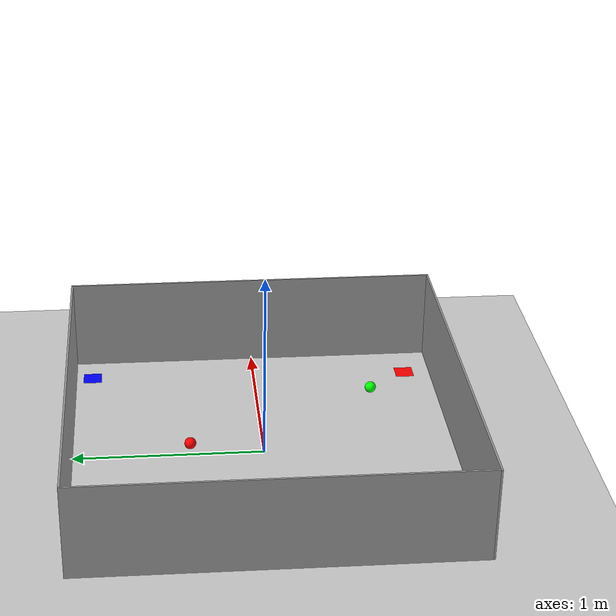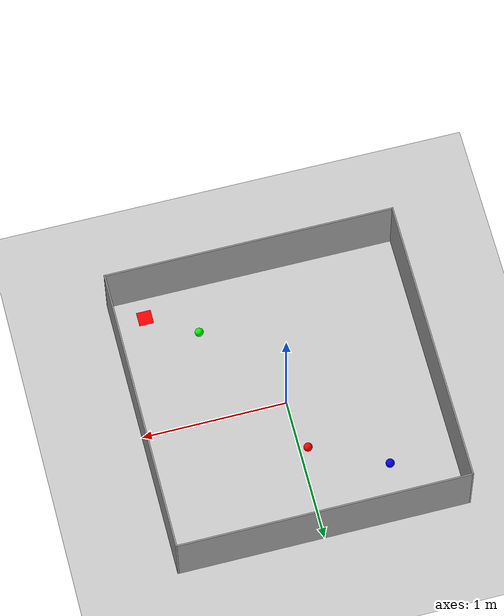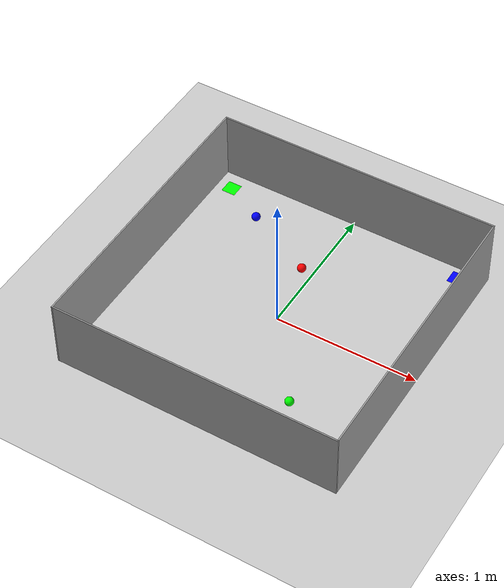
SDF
<sdf version="1.7">
 <world name="default">
  <light name="sun" type="directional">
   <pose>0 0 10 0 -0 0</pose>
   <diffuse>0.8 0.8 0.8 1</diffuse>
   <specular>0.2 0.2 0.2 1</specular>
   <attenuation>
    <range>1000</range>
    <constant>0.9</constant>
    <linear>0.01</linear>
    <quadratic>0.001</quadratic>
   </attenuation>
   <direction>-0.5 0.1 -0.9</direction>
   <spot><inner_angle>0</inner_angle><outer_angle>0</outer_angle><falloff>0</falloff></spot>
  </light>
  <model name="ground_plane">
   <static>1</static>
   <link name="link">
    <collision name="collision">
     <geometry><plane><normal>0 0 1</normal><size>100 100</size></plane></geometry>
     <surface><friction><ode><mu>100</mu><mu2>50</mu2></ode></friction></surface>
    </collision>
    <visual name="visual">
     <cast_shadows>0</cast_shadows>
     <geometry><plane><normal>0 0 1</normal><size>100 100</size></plane></geometry>
     <material>
      <script><uri>file://media/materials/scripts/gazebo.material</uri><name>Gazebo/Grey</name></script>
     </material>
    </visual>
   </link>
  </model>
  <gravity>0 0 -9.8</gravity>
  <magnetic_field>6e-06 2.3e-05 -4.2e-05</magnetic_field>
  <atmosphere type="adiabatic"/>
  <physics type="ode">
   <max_step_size>0.001</max_step_size>
   <real_time_factor>1</real_time_factor>
   <real_time_update_rate>1000</real_time_update_rate>
  </physics>
  <scene><ambient>0.4 0.4 0.4 1</ambient><background>0.7 0.7 0.7 1</background><shadows>1</shadows></scene>
  <audio><device>default</device></audio>
  <spherical_coordinates>
   <surface_model>EARTH_WGS84</surface_model>
   <latitude_deg>0</latitude_deg>
   <longitude_deg>0</longitude_deg>
   <elevation>0</elevation>
   <heading_deg>0</heading_deg>
  </spherical_coordinates>
  <model name="Zidovi">
   <link name="Floor_0">
    <pose>-0.965 -0.965006 2.5 0 -0 0</pose>
    <visual name="Floor_0_Visual">
     <pose>0 0 0.05 0 -0 0</pose>
     <geometry><box><size>0 0 0.1</size></box></geometry>
     <material>
      <script><uri>file://media/materials/scripts/gazebo.material</uri><name>Gazebo/Grey</name></script>
      <ambient>1 1 1 1</ambient>
      <shader type="pixel"/>
     </material>
     <meta><layer>1</layer></meta>
    </visual>
    <collision name="Floor_0_Collision">
     <pose>0 0 0.05 0 -0 0</pose>
     <geometry><box><size>0 0 0.1</size></box></geometry>
     <surface>
      <friction>
       <ode><mu>1</mu><mu2>1</mu2><fdir1>0 0 0</fdir1><slip1>0</slip1><slip2>0</slip2></ode>
       <torsional>
        <coefficient>1</coefficient>
        <patch_radius>0</patch_radius>
        <surface_radius>0</surface_radius>
        <use_patch_radius>1</use_patch_radius>
        <ode><slip>0</slip></ode>
       </torsional>
      </friction>
      <bounce><restitution_coefficient>0</restitution_coefficient><threshold>1e+06</threshold></bounce>
      <contact>
       <collide_without_contact>0</collide_without_contact>
       <collide_without_contact_bitmask>1</collide_without_contact_bitmask>
       <collide_bitmask>1</collide_bitmask>
       <ode>
        <soft_cfm>0</soft_cfm>
        <soft_erp>0.2</soft_erp>
        <kp>1e+13</kp>
        <kd>1</kd>
        <max_vel>0.01</max_vel>
        <min_depth>0</min_depth>
       </ode>
       <bullet>
        <split_impulse>1</split_impulse>
        <split_impulse_penetration_threshold>-0.01</split_impulse_penetration_threshold>
        <soft_cfm>0</soft_cfm>
        <soft_erp>0.2</soft_erp>
        <kp>1e+13</kp>
        <kd>1</kd>
       </bullet>
      </contact>
     </surface>
    </collision>
   </link>
   <link name="Wall_0">
    <pose>-0.965 0.034994 0 0 -0 1.5708</pose>
    <visual name="Wall_0_Visual">
     <pose>0 0 0.25 0 -0 0</pose>
     <geometry><box><size>2.01003 0.01 0.5</size></box></geometry>
     <material>
      <script><uri>file://media/materials/scripts/gazebo.material</uri><name>Gazebo/Grey</name></script>
      <ambient>1 1 1 1</ambient>
      <shader type="pixel"/>
     </material>
     <meta><layer>0</layer></meta>
    </visual>
    <collision name="Wall_0_Collision">
     <pose>0 0 0.25 0 -0 0</pose>
     <geometry><box><size>2.01003 0.01 0.5</size></box></geometry>
     <surface>
      <friction>
       <ode><mu>1</mu><mu2>1</mu2><fdir1>0 0 0</fdir1><slip1>0</slip1><slip2>0</slip2></ode>
       <torsional>
        <coefficient>1</coefficient>
        <patch_radius>0</patch_radius>
        <surface_radius>0</surface_radius>
        <use_patch_radius>1</use_patch_radius>
        <ode><slip>0</slip></ode>
       </torsional>
      </friction>
      <bounce><restitution_coefficient>0</restitution_coefficient><threshold>1e+06</threshold></bounce>
      <contact>
       <collide_without_contact>0</collide_without_contact>
       <collide_without_contact_bitmask>1</collide_without_contact_bitmask>
       <collide_bitmask>1</collide_bitmask>
       <ode>
        <soft_cfm>0</soft_cfm>
        <soft_erp>0.2</soft_erp>
        <kp>1e+13</kp>
        <kd>1</kd>
        <max_vel>0.01</max_vel>
        <min_depth>0</min_depth>
       </ode>
       <bullet>
        <split_impulse>1</split_impulse>
        <split_impulse_penetration_threshold>-0.01</split_impulse_penetration_threshold>
        <soft_cfm>0</soft_cfm>
        <soft_erp>0.2</soft_erp>
        <kp>1e+13</kp>
        <kd>1</kd>
       </bullet>
      </contact>
     </surface>
    </collision>
   </link>
   <link name="Wall_1">
    <pose>0.035 1.03499 0 0 -0 0</pose>
    <visual name="Wall_1_Visual">
     <pose>0 0 0.25 0 -0 0</pose>
     <geometry><box><size>2.01 0.01 0.5</size></box></geometry>
     <material>
      <script><uri>file://media/materials/scripts/gazebo.material</uri><name>Gazebo/Grey</name></script>
      <ambient>1 1 1 1</ambient>
      <shader type="pixel"/>
     </material>
     <meta><layer>0</layer></meta>
    </visual>
    <collision name="Wall_1_Collision">
     <pose>0 0 0.25 0 -0 0</pose>
     <geometry><box><size>2.01 0.01 0.5</size></box></geometry>
     <surface>
      <friction>
       <ode><mu>1</mu><mu2>1</mu2><fdir1>0 0 0</fdir1><slip1>0</slip1><slip2>0</slip2></ode>
       <torsional>
        <coefficient>1</coefficient>
        <patch_radius>0</patch_radius>
        <surface_radius>0</surface_radius>
        <use_patch_radius>1</use_patch_radius>
        <ode><slip>0</slip></ode>
       </torsional>
      </friction>
      <bounce><restitution_coefficient>0</restitution_coefficient><threshold>1e+06</threshold></bounce>
      <contact>
       <collide_without_contact>0</collide_without_contact>
       <collide_without_contact_bitmask>1</collide_without_contact_bitmask>
       <collide_bitmask>1</collide_bitmask>
       <ode>
        <soft_cfm>0</soft_cfm>
        <soft_erp>0.2</soft_erp>
        <kp>1e+13</kp>
        <kd>1</kd>
        <max_vel>0.01</max_vel>
        <min_depth>0</min_depth>
       </ode>
       <bullet>
        <split_impulse>1</split_impulse>
        <split_impulse_penetration_threshold>-0.01</split_impulse_penetration_threshold>
        <soft_cfm>0</soft_cfm>
        <soft_erp>0.2</soft_erp>
        <kp>1e+13</kp>
        <kd>1</kd>
       </bullet>
      </contact>
     </surface>
    </collision>
   </link>
   <link name="Wall_2">
    <pose>1.035 0.034994 0 0 0 -1.5708</pose>
    <visual name="Wall_2_Visual">
     <pose>0 0 0.25 0 -0 0</pose>
     <geometry><box><size>2.01 0.01 0.5</size></box></geometry>
     <material>
      <script><uri>file://media/materials/scripts/gazebo.material</uri><name>Gazebo/Grey</name></script>
      <ambient>1 1 1 1</ambient>
      <shader type="pixel"/>
     </material>
     <meta><layer>0</layer></meta>
    </visual>
    <collision name="Wall_2_Collision">
     <pose>0 0 0.25 0 -0 0</pose>
     <geometry><box><size>2.01 0.01 0.5</size></box></geometry>
     <surface>
      <friction>
       <ode><mu>1</mu><mu2>1</mu2><fdir1>0 0 0</fdir1><slip1>0</slip1><slip2>0</slip2></ode>
       <torsional>
        <coefficient>1</coefficient>
        <patch_radius>0</patch_radius>
        <surface_radius>0</surface_radius>
        <use_patch_radius>1</use_patch_radius>
        <ode><slip>0</slip></ode>
       </torsional>
      </friction>
      <bounce><restitution_coefficient>0</restitution_coefficient><threshold>1e+06</threshold></bounce>
      <contact>
       <collide_without_contact>0</collide_without_contact>
       <collide_without_contact_bitmask>1</collide_without_contact_bitmask>
       <collide_bitmask>1</collide_bitmask>
       <ode>
        <soft_cfm>0</soft_cfm>
        <soft_erp>0.2</soft_erp>
        <kp>1e+13</kp>
        <kd>1</kd>
        <max_vel>0.01</max_vel>
        <min_depth>0</min_depth>
       </ode>
       <bullet>
        <split_impulse>1</split_impulse>
        <split_impulse_penetration_threshold>-0.01</split_impulse_penetration_threshold>
        <soft_cfm>0</soft_cfm>
        <soft_erp>0.2</soft_erp>
        <kp>1e+13</kp>
        <kd>1</kd>
       </bullet>
      </contact>
     </surface>
    </collision>
   </link>
   <link name="Wall_3">
    <pose>0.035 -0.965006 0 0 -0 3.14159</pose>
    <visual name="Wall_3_Visual">
     <pose>0 0 0.25 0 -0 0</pose>
     <geometry><box><size>2.01 0.01 0.5</size></box></geometry>
     <material>
      <script><uri>file://media/materials/scripts/gazebo.material</uri><name>Gazebo/Grey</name></script>
      <ambient>1 1 1 1</ambient>
      <shader type="pixel"/>
     </material>
     <meta><layer>0</layer></meta>
    </visual>
    <collision name="Wall_3_Collision">
     <pose>0 0 0.25 0 -0 0</pose>
     <geometry><box><size>2.01 0.01 0.5</size></box></geometry>
     <surface>
      <friction>
       <ode><mu>1</mu><mu2>1</mu2><fdir1>0 0 0</fdir1><slip1>0</slip1><slip2>0</slip2></ode>
       <torsional>
        <coefficient>1</coefficient>
        <patch_radius>0</patch_radius>
        <surface_radius>0</surface_radius>
        <use_patch_radius>1</use_patch_radius>
        <ode><slip>0</slip></ode>
       </torsional>
      </friction>
      <bounce><restitution_coefficient>0</restitution_coefficient><threshold>1e+06</threshold></bounce>
      <contact>
       <collide_without_contact>0</collide_without_contact>
       <collide_without_contact_bitmask>1</collide_without_contact_bitmask>
       <collide_bitmask>1</collide_bitmask>
       <ode>
        <soft_cfm>0</soft_cfm>
        <soft_erp>0.2</soft_erp>
        <kp>1e+13</kp>
        <kd>1</kd>
        <max_vel>0.01</max_vel>
        <min_depth>0</min_depth>
       </ode>
       <bullet>
        <split_impulse>1</split_impulse>
        <split_impulse_penetration_threshold>-0.01</split_impulse_penetration_threshold>
        <soft_cfm>0</soft_cfm>
        <soft_erp>0.2</soft_erp>
        <kp>1e+13</kp>
        <kd>1</kd>
       </bullet>
      </contact>
     </surface>
    </collision>
   </link>
   <static>1</static>
   <pose>-0.035 -0.034994 0 0 -0 0</pose>
  </model>
  <model name="unit_box_g">
   <link name="link">
    <inertial>
     <mass>1</mass>
     <inertia>
      <ixx>0.166667</ixx>
      <ixy>0</ixy>
      <ixz>0</ixz>
      <iyy>0.166667</iyy>
      <iyz>0</iyz>
      <izz>0.166667</izz>
     </inertia>
    </inertial>
    <visual name="visual">
     <geometry><box><size>0.1 0.1 0.0001</size></box></geometry>
     <material>
      <script><name>Gazebo/Grey</name><uri>file://media/materials/scripts/gazebo.material</uri></script>
      <shader type="pixel"><normal_map>__default__</normal_map></shader>
      <ambient>0 1 0 1</ambient>
      <diffuse>0.7 0.7 0.7 1</diffuse>
      <specular>0.01 0.01 0.01 1</specular>
      <emissive>0 0 0 1</emissive>
     </material>
    </visual>
    <collision name="collision">
     <geometry><box><size>0.1 0.1 0.0001</size></box></geometry>
     <surface>
      <friction>
       <ode><mu>1</mu><mu2>1</mu2><fdir1>0 0 0</fdir1><slip1>0</slip1><slip2>0</slip2></ode>
       <torsional>
        <coefficient>1</coefficient>
        <patch_radius>0</patch_radius>
        <surface_radius>0</surface_radius>
        <use_patch_radius>1</use_patch_radius>
        <ode><slip>0</slip></ode>
       </torsional>
      </friction>
      <bounce><restitution_coefficient>0</restitution_coefficient><threshold>1e+06</threshold></bounce>
      <contact>
       <collide_without_contact>0</collide_without_contact>
       <collide_without_contact_bitmask>1</collide_without_contact_bitmask>
       <collide_bitmask>1</collide_bitmask>
       <ode>
        <soft_cfm>0</soft_cfm>
        <soft_erp>0.2</soft_erp>
        <kp>1e+13</kp>
        <kd>1</kd>
        <max_vel>0.01</max_vel>
        <min_depth>0</min_depth>
       </ode>
       <bullet>
        <split_impulse>1</split_impulse>
        <split_impulse_penetration_threshold>-0.01</split_impulse_penetration_threshold>
        <soft_cfm>0</soft_cfm>
        <soft_erp>0.2</soft_erp>
        <kp>1e+13</kp>
        <kd>1</kd>
       </bullet>
      </contact>
     </surface>
    </collision>
   </link>
   <static>0</static>
   <pose>-0.887314 0.869344 0 0 -0 0</pose>
  </model>
  <model name="unit_box_b">
   <link name="link">
    <inertial>
     <mass>1</mass>
     <inertia>
      <ixx>0.166667</ixx>
      <ixy>0</ixy>
      <ixz>0</ixz>
      <iyy>0.166667</iyy>
      <iyz>0</iyz>
      <izz>0.166667</izz>
     </inertia>
    </inertial>
    <visual name="visual">
     <geometry><box><size>0.1 0.1 0.0001</size></box></geometry>
     <material>
      <script><name>Gazebo/Grey</name><uri>file://media/materials/scripts/gazebo.material</uri></script>
      <shader type="pixel"><normal_map>__default__</normal_map></shader>
      <ambient>0 0 1 1</ambient>
      <diffuse>0.7 0.7 0.7 1</diffuse>
      <specular>0.01 0.01 0.01 1</specular>
      <emissive>0 0 0 1</emissive>
     </material>
    </visual>
    <collision name="collision">
     <geometry><box><size>0.1 0.1 0.0001</size></box></geometry>
     <surface>
      <friction>
       <ode><mu>1</mu><mu2>1</mu2><fdir1>0 0 0</fdir1><slip1>0</slip1><slip2>0</slip2></ode>
       <torsional>
        <coefficient>1</coefficient>
        <patch_radius>0</patch_radius>
        <surface_radius>0</surface_radius>
        <use_patch_radius>1</use_patch_radius>
        <ode><slip>0</slip></ode>
       </torsional>
      </friction>
      <bounce><restitution_coefficient>0</restitution_coefficient><threshold>1e+06</threshold></bounce>
      <contact>
       <collide_without_contact>0</collide_without_contact>
       <collide_without_contact_bitmask>1</collide_without_contact_bitmask>
       <collide_bitmask>1</collide_bitmask>
       <ode>
        <soft_cfm>0</soft_cfm>
        <soft_erp>0.2</soft_erp>
        <kp>1e+13</kp>
        <kd>1</kd>
        <max_vel>0.01</max_vel>
        <min_depth>0</min_depth>
       </ode>
       <bullet>
        <split_impulse>1</split_impulse>
        <split_impulse_penetration_threshold>-0.01</split_impulse_penetration_threshold>
        <soft_cfm>0</soft_cfm>
        <soft_erp>0.2</soft_erp>
        <kp>1e+13</kp>
        <kd>1</kd>
       </bullet>
      </contact>
     </surface>
    </collision>
   </link>
   <static>0</static>
   <pose>0.826119 0.906004 0 0 -0 0</pose>
  </model>
  <model name="unit_box_r">
   <link name="link">
    <inertial>
     <mass>1</mass>
     <inertia>
      <ixx>0.166667</ixx>
      <ixy>0</ixy>
      <ixz>0</ixz>
      <iyy>0.166667</iyy>
      <iyz>0</iyz>
      <izz>0.166667</izz>
     </inertia>
    </inertial>
    <visual name="visual">
     <geometry><box><size>0.1 0.1 0.0001</size></box></geometry>
     <material>
      <script><name>Gazebo/Grey</name><uri>file://media/materials/scripts/gazebo.material</uri></script>
      <shader type="pixel"><normal_map>__default__</normal_map></shader>
      <ambient>1 0 0 1</ambient>
      <diffuse>0.7 0.7 0.7 1</diffuse>
      <specular>0.01 0.01 0.01 1</specular>
      <emissive>0 0 0 1</emissive>
     </material>
    </visual>
    <collision name="collision">
     <geometry><box><size>0.1 0.1 0.0001</size></box></geometry>
     <surface>
      <friction>
       <ode><mu>1</mu><mu2>1</mu2><fdir1>0 0 0</fdir1><slip1>0</slip1><slip2>0</slip2></ode>
       <torsional>
        <coefficient>1</coefficient>
        <patch_radius>0</patch_radius>
        <surface_radius>0</surface_radius>
        <use_patch_radius>1</use_patch_radius>
        <ode><slip>0</slip></ode>
       </torsional>
      </friction>
      <bounce><restitution_coefficient>0</restitution_coefficient><threshold>1e+06</threshold></bounce>
      <contact>
       <collide_without_contact>0</collide_without_contact>
       <collide_without_contact_bitmask>1</collide_without_contact_bitmask>
       <collide_bitmask>1</collide_bitmask>
       <ode>
        <soft_cfm>0</soft_cfm>
        <soft_erp>0.2</soft_erp>
        <kp>1e+13</kp>
        <kd>1</kd>
        <max_vel>0.01</max_vel>
        <min_depth>0</min_depth>
       </ode>
       <bullet>
        <split_impulse>1</split_impulse>
        <split_impulse_penetration_threshold>-0.01</split_impulse_penetration_threshold>
        <soft_cfm>0</soft_cfm>
        <soft_erp>0.2</soft_erp>
        <kp>1e+13</kp>
        <kd>1</kd>
       </bullet>
      </contact>
     </surface>
    </collision>
   </link>
   <static>0</static>
   <pose>0.774855 -0.853855 0 0 -0 0</pose>
  </model>
  <model name="unit_sphere_b">
   <link name="link">
    <inertial>
     <mass>0.00031416</mass>
     <inertia><ixx>1e-08</ixx><ixy>0</ixy><ixz>0</ixz><iyy>1e-08</iyy><iyz>0</iyz><izz>1e-08</izz></inertia>
    </inertial>
    <self_collide>1</self_collide>
    <kinematic>1</kinematic>
    <pose>2 0 0.1 0 -0 0</pose>
    <visual name="visual">
     <geometry><sphere><radius>0.03</radius></sphere></geometry>
     <material>
      <script><name>Gazebo/Grey</name><uri>file://media/materials/scripts/gazebo.material</uri></script>
      <shader type="pixel"><normal_map>__default__</normal_map></shader>
      <ambient>1 0 0 0</ambient>
      <diffuse>0.7 0.7 0.7 1</diffuse>
      <specular>0.01 0.01 0.01 1</specular>
      <emissive>0 0 0 1</emissive>
     </material>
    </visual>
    <collision name="collision">
     <geometry><sphere><radius>0.01</radius></sphere></geometry>
     <surface>
      <friction>
       <ode><mu>1</mu><mu2>1</mu2><fdir1>0 0 0</fdir1><slip1>0</slip1><slip2>0</slip2></ode>
       <torsional>
        <coefficient>1</coefficient>
        <patch_radius>0</patch_radius>
        <surface_radius>0</surface_radius>
        <use_patch_radius>1</use_patch_radius>
        <ode><slip>0</slip></ode>
       </torsional>
      </friction>
      <bounce><restitution_coefficient>0</restitution_coefficient><threshold>1e+06</threshold></bounce>
      <contact>
       <collide_without_contact>0</collide_without_contact>
       <collide_without_contact_bitmask>1</collide_without_contact_bitmask>
       <collide_bitmask>1</collide_bitmask>
       <ode>
        <soft_cfm>0</soft_cfm>
        <soft_erp>0.2</soft_erp>
        <kp>1e+13</kp>
        <kd>1</kd>
        <max_vel>0.01</max_vel>
        <min_depth>0</min_depth>
       </ode>
       <bullet>
        <split_impulse>1</split_impulse>
        <split_impulse_penetration_threshold>-0.01</split_impulse_penetration_threshold>
        <soft_cfm>0</soft_cfm>
        <soft_erp>0.2</soft_erp>
        <kp>1e+13</kp>
        <kd>1</kd>
       </bullet>
      </contact>
     </surface>
    </collision>
   </link>
   <link name="link_0">
    <inertial>
     <mass>0.00031416</mass>
     <inertia><ixx>1e-08</ixx><ixy>0</ixy><ixz>0</ixz><iyy>1e-08</iyy><iyz>0</iyz><izz>1e-08</izz></inertia>
    </inertial>
    <pose>2.5 -1 0.1 0 -0 0</pose>
    <self_collide>1</self_collide>
    <kinematic>1</kinematic>
    <visual name="visual">
     <geometry><sphere><radius>0.03</radius></sphere></geometry>
     <material>
      <lighting>1</lighting>
      <script><uri>file://media/materials/scripts/gazebo.material</uri><name>Gazebo/Grey</name></script>
      <shader type="pixel"><normal_map>__default__</normal_map></shader>
      <ambient>0 1 0 0</ambient>
      <diffuse>0.7 0.7 0.7 1</diffuse>
      <specular>0.01 0.01 0.01 1</specular>
      <emissive>0 0 0 1</emissive>
     </material>
    </visual>
    <collision name="collision">
     <geometry><sphere><radius>0.01</radius></sphere></geometry>
     <surface>
      <friction>
       <ode><mu>1</mu><mu2>1</mu2><fdir1>0 0 0</fdir1><slip1>0</slip1><slip2>0</slip2></ode>
       <torsional>
        <coefficient>1</coefficient>
        <patch_radius>0</patch_radius>
        <surface_radius>0</surface_radius>
        <use_patch_radius>1</use_patch_radius>
        <ode><slip>0</slip></ode>
       </torsional>
      </friction>
      <bounce><restitution_coefficient>0</restitution_coefficient><threshold>1e+06</threshold></bounce>
      <contact>
       <collide_without_contact>0</collide_without_contact>
       <collide_without_contact_bitmask>1</collide_without_contact_bitmask>
       <collide_bitmask>1</collide_bitmask>
       <ode>
        <soft_cfm>0</soft_cfm>
        <soft_erp>0.2</soft_erp>
        <kp>1e+13</kp>
        <kd>1</kd>
        <max_vel>0.01</max_vel>
        <min_depth>0</min_depth>
       </ode>
       <bullet>
        <split_impulse>1</split_impulse>
        <split_impulse_penetration_threshold>-0.01</split_impulse_penetration_threshold>
        <soft_cfm>0</soft_cfm>
        <soft_erp>0.2</soft_erp>
        <kp>1e+13</kp>
        <kd>1</kd>
       </bullet>
      </contact>
     </surface>
    </collision>
   </link>
   <link name="link_1">
    <inertial>
     <mass>0.01</mass>
     <inertia><ixx>4e-07</ixx><ixy>0</ixy><ixz>0</ixz><iyy>4e-07</iyy><iyz>0</iyz><izz>4e-07</izz></inertia>
    </inertial>
    <pose>1.5 0.25 0.1 0 -0 0</pose>
    <self_collide>1</self_collide>
    <kinematic>1</kinematic>
    <visual name="visual">
     <geometry><sphere><radius>0.03</radius></sphere></geometry>
     <material>
      <lighting>1</lighting>
      <script><uri>file://media/materials/scripts/gazebo.material</uri><name>Gazebo/Grey</name></script>
      <shader type="pixel"><normal_map>__default__</normal_map></shader>
      <ambient>0 0 1 0</ambient>
      <diffuse>0.7 0.7 0.7 1</diffuse>
      <specular>0.01 0.01 0.01 1</specular>
      <emissive>0 0 0 1</emissive>
     </material>
    </visual>
    <collision name="collision">
     <geometry><sphere><radius>0.01</radius></sphere></geometry>
     <surface>
      <friction>
       <ode><mu>1</mu><mu2>1</mu2><fdir1>0 0 0</fdir1><slip1>0</slip1><slip2>0</slip2></ode>
       <torsional>
        <coefficient>1</coefficient>
        <patch_radius>0</patch_radius>
        <surface_radius>0</surface_radius>
        <use_patch_radius>1</use_patch_radius>
        <ode><slip>0</slip></ode>
       </torsional>
      </friction>
      <bounce><restitution_coefficient>0</restitution_coefficient><threshold>1e+06</threshold></bounce>
      <contact>
       <collide_without_contact>0</collide_without_contact>
       <collide_without_contact_bitmask>1</collide_without_contact_bitmask>
       <collide_bitmask>1</collide_bitmask>
       <ode>
        <soft_cfm>0</soft_cfm>
        <soft_erp>0.2</soft_erp>
        <kp>1e+13</kp>
        <kd>1</kd>
        <max_vel>0.01</max_vel>
        <min_depth>0</min_depth>
       </ode>
       <bullet>
        <split_impulse>1</split_impulse>
        <split_impulse_penetration_threshold>-0.01</split_impulse_penetration_threshold>
        <soft_cfm>0</soft_cfm>
        <soft_erp>0.2</soft_erp>
        <kp>1e+13</kp>
        <kd>1</kd>
       </bullet>
      </contact>
     </surface>
    </collision>
   </link>
   <static>0</static>
   <pose>-2.04809 0.385769 0 0 -0 0</pose>
  </model>
 </world>
</sdf>
